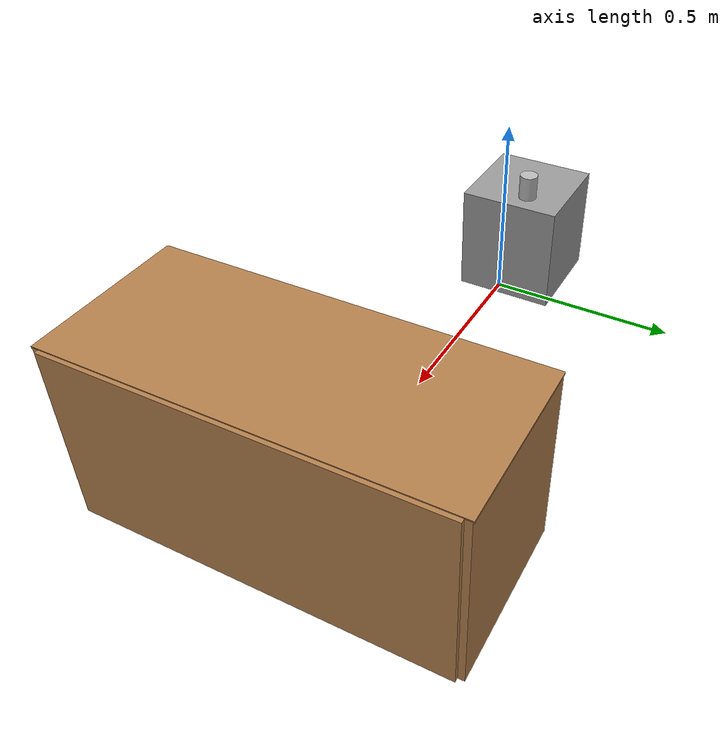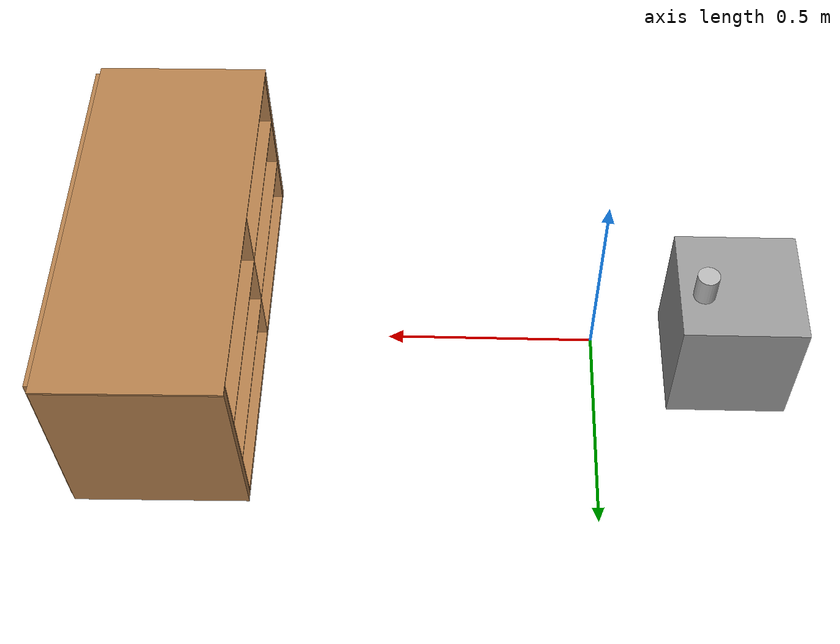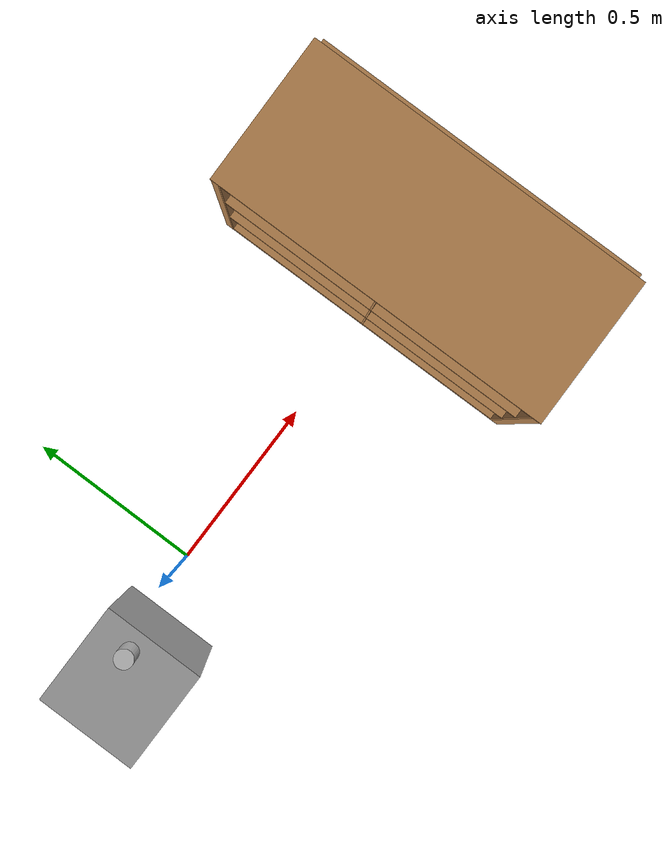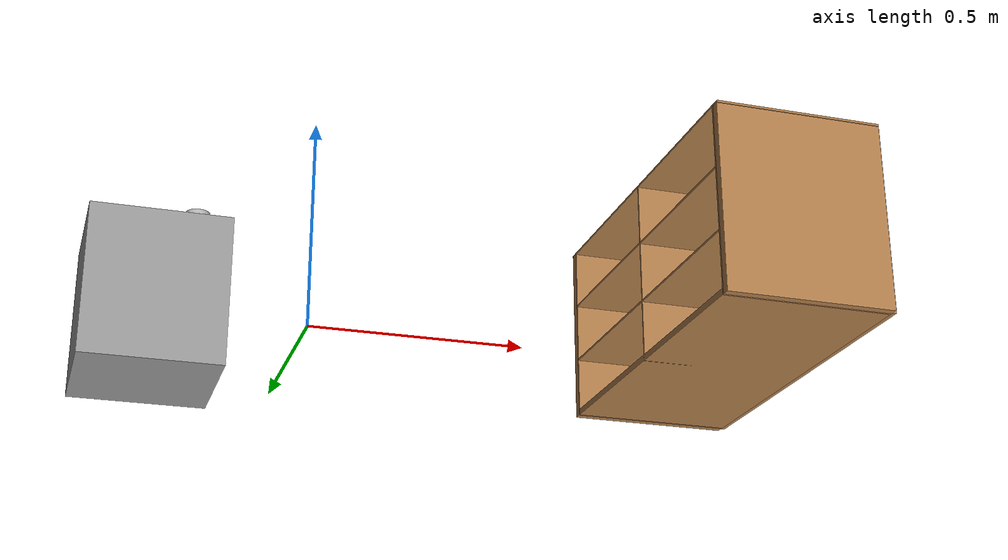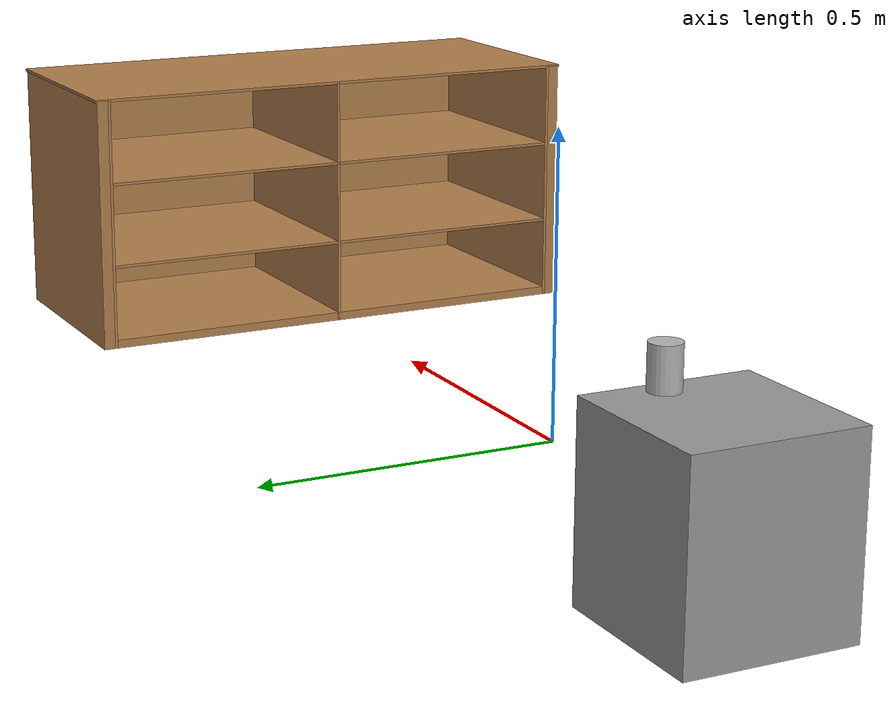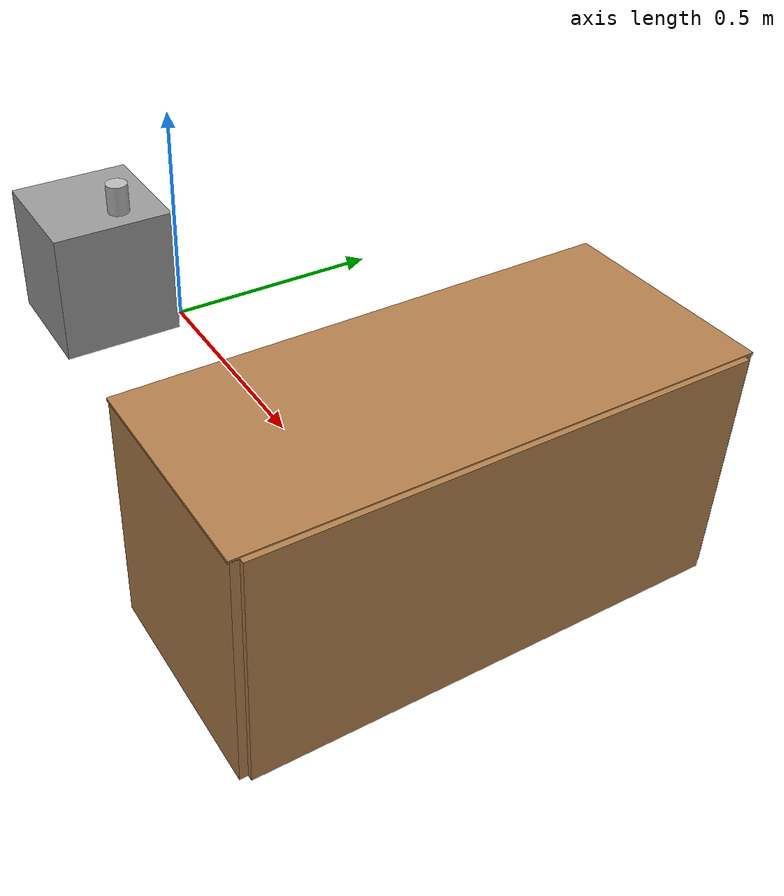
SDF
<?xml version='1.0'?>
<sdf version='1.6'>
  <model name='turtlebot3_rooms1'>
    <link name='link_0'>
      <pose frame=''>-0.355533 -0.070235 0.004189 0 -0 0</pose>
      <inertial>
        <mass>0.00123934</mass>
        <inertia>
          <ixx>2.13894e-06</ixx>
          <ixy>0</ixy>
          <ixz>0</ixz>
          <iyy>2.13894e-06</iyy>
          <iyz>0</iyz>
          <izz>3.73085e-06</izz>
        </inertia>
        <pose frame=''>0 0 0 0 -0 0</pose>
      </inertial>
      <self_collide>0</self_collide>
      <kinematic>0</kinematic>
      <visual name='visual'>
        <pose frame=''>0 0 -0.025 0 -0 0</pose>
        <geometry>
          <box>
            <size>0.3 0.3 0.33</size>
          </box>
        </geometry>
        <material>
          <lighting>1</lighting>
          <script>
            <uri>file://media/materials/scripts/gazebo.material</uri>
            <name>Gazebo/Grey</name>
          </script>
          <ambient>0.3 0.3 0.3 1</ambient>
          <diffuse>0.7 0.7 0.7 1</diffuse>
          <specular>0.01 0.01 0.01 1</specular>
          <emissive>0 0 0 1</emissive>
          <shader type='pixel'/>
        </material>
        <cast_shadows>1</cast_shadows>
        <transparency>0</transparency>
      </visual>
      <collision name='collision'>
        <laser_retro>0</laser_retro>
        <max_contacts>10</max_contacts>
        <pose frame=''>0 0 -0.025 0 -0 0</pose>
        <geometry>
          <box>
            <size>0.3 0.3 0.33</size>
          </box>
        </geometry>
        <surface>
          <friction>
            <ode>
              <mu>1</mu>
              <mu2>1</mu2>
              <fdir1>0 0 0</fdir1>
              <slip1>0</slip1>
              <slip2>0</slip2>
            </ode>
            <torsional>
              <coefficient>1</coefficient>
              <patch_radius>0</patch_radius>
              <surface_radius>0</surface_radius>
              <use_patch_radius>1</use_patch_radius>
              <ode>
                <slip>0</slip>
              </ode>
            </torsional>
          </friction>
          <bounce>
            <restitution_coefficient>0</restitution_coefficient>
            <threshold>1e+06</threshold>
          </bounce>
          <contact>
            <collide_without_contact>0</collide_without_contact>
            <collide_without_contact_bitmask>1</collide_without_contact_bitmask>
            <collide_bitmask>1</collide_bitmask>
            <ode>
              <soft_cfm>0</soft_cfm>
              <soft_erp>0.2</soft_erp>
              <kp>1e+13</kp>
              <kd>1</kd>
              <max_vel>0.01</max_vel>
              <min_depth>0</min_depth>
            </ode>
            <bullet>
              <split_impulse>1</split_impulse>
              <split_impulse_penetration_threshold>-0.01</split_impulse_penetration_threshold>
              <soft_cfm>0</soft_cfm>
              <soft_erp>0.2</soft_erp>
              <kp>1e+13</kp>
              <kd>1</kd>
            </bullet>
          </contact>
        </surface>
      </collision>
    </link>
    <model name='bookshelf_i_0'>
      <link name='link'>
        <pose frame=''>0 0 0 0 0 -1.56022</pose>
        <inertial>
          <mass>1</mass>
        </inertial>
        <self_collide>0</self_collide>
        <kinematic>0</kinematic>
        <visual name='right_side'>
          <pose frame=''>-0.455 -0.195 0.225 0 -0 0</pose>
          <geometry>
            <box>
              <size>0.02 0.4 0.45</size>
            </box>
          </geometry>
          <material>
            <script>
	      <uri>file://media/materials/scripts/gazebo.material</uri>
              <name>Gazebo/Wood</name>
            </script>
            <shader type='pixel'/>
            <ambient>1 1 1 1</ambient>
            <diffuse>1 1 1 1</diffuse>
            <specular>0 0 0 1</specular>
            <emissive>0 0 0 1</emissive>
          </material>
          <transparency>0</transparency>
          <cast_shadows>1</cast_shadows>
        </visual>
        <visual name='left_side_inner'>
          <pose frame=''>0.4425 -0.195 0.225 0 -0 0</pose>
          <geometry>
            <box>
              <size>0.005 0.4 0.45</size>
            </box>
          </geometry>
          <material>
            <script>
              <uri>file://media/materials/scripts/gazebo.material</uri>
              <name>Gazebo/Wood</name>
            </script>
            <shader type='pixel'/>
            <ambient>1 1 1 1</ambient>
            <diffuse>1 1 1 1</diffuse>
            <specular>0.2 0.2 0.2 1</specular>
            <emissive>0 0 0 1</emissive>
          </material>
          <transparency>0</transparency>
          <cast_shadows>1</cast_shadows>
        </visual>
        <visual name='bottom'>
          <pose frame=''>0 -0.195 0.0075 0 -0 0</pose>
          <geometry>
            <box>
              <size>0.88 0.4 0.015</size>
            </box>
          </geometry>
          <material>
            <script>
              <uri>file://media/materials/scripts/gazebo.material</uri>
              <name>Gazebo/Wood</name>
            </script>
            <shader type='pixel'/>
            <ambient>1 1 1 1</ambient>
            <diffuse>1 1 1 1</diffuse>
            <specular>0.2 0.2 0.2 1</specular>
            <emissive>0 0 0 1</emissive>
          </material>
          <transparency>0</transparency>
          <cast_shadows>1</cast_shadows>
        </visual>
        <visual name='low_shelf'>
          <pose frame=''>0 -0.195 0.15 0 -0 0</pose>
          <geometry>
            <box>
              <size>0.88 0.4 0.005</size>
            </box>
          </geometry>
          <material>
            <script>
              <uri>file://media/materials/scripts/gazebo.material</uri>
              <name>Gazebo/Wood</name>
            </script>
            <shader type='pixel'/>
            <ambient>1 1 1 1</ambient>
            <diffuse>1 1 1 1</diffuse>
            <specular>0.2 0.2 0.2 1</specular>
            <emissive>0 0 0 1</emissive>
          </material>
          <transparency>0</transparency>
          <cast_shadows>1</cast_shadows>
        </visual>
        <visual name='back'>
          <pose frame=''>0 0.01 0.225 0 -0 0</pose>
          <geometry>
            <box>
              <size>0.9 0.01 0.45</size>
            </box>
          </geometry>
          <material>
            <script>
              <uri>file://media/materials/scripts/gazebo.material</uri>
              <name>Gazebo/Wood</name>
            </script>
            <shader type='pixel'/>
            <ambient>1 1 1 1</ambient>
            <diffuse>1 1 1 1</diffuse>
            <specular>0.2 0.2 0.2 1</specular>
            <emissive>0 0 0 1</emissive>
          </material>
          <transparency>0</transparency>
          <cast_shadows>1</cast_shadows>
        </visual>
        <visual name='top'>
          <pose frame=''>0 -0.195 0.45 0 -0 0</pose>
          <geometry>
            <box>
              <size>0.935 0.4 0.005</size>
            </box>
          </geometry>
          <material>
            <script>
              <uri>file://media/materials/scripts/gazebo.material</uri>
              <name>Gazebo/Wood</name>
            </script>
            <shader type='pixel'/>
            <ambient>1 1 1 1</ambient>
            <diffuse>1 1 1 1</diffuse>
            <specular>0.2 0.2 0.2 1</specular>
            <emissive>0 0 0 1</emissive>
          </material>
          <transparency>0</transparency>
          <cast_shadows>1</cast_shadows>
        </visual>
        <visual name='right_side_inner'>
          <pose frame=''>-0.4425 -0.195 0.225 0 -0 0</pose>
          <geometry>
            <box>
              <size>0.005 0.4 0.45</size>
            </box>
          </geometry>
          <material>
            <script>
              <uri>file://media/materials/scripts/gazebo.material</uri>
              <name>Gazebo/Wood</name>
            </script>
            <shader type='pixel'/>
            <ambient>1 1 1 1</ambient>
            <diffuse>1 1 1 1</diffuse>
            <specular>0.2 0.2 0.2 1</specular>
            <emissive>0 0 0 1</emissive>
          </material>
          <transparency>0</transparency>
          <cast_shadows>1</cast_shadows>
        </visual>
        <visual name='high_shelf'>
          <pose frame=''>0 -0.195 0.3 0 -0 0</pose>
          <geometry>
            <box>
              <size>0.88 0.4 0.005</size>
            </box>
          </geometry>
          <material>
            <script>
              <uri>file://media/materials/scripts/gazebo.material</uri>
              <name>Gazebo/Wood</name>
            </script>
            <shader type='pixel'/>
            <ambient>1 1 1 1</ambient>
            <diffuse>1 1 1 1</diffuse>
            <specular>0.2 0.2 0.2 1</specular>
            <emissive>0 0 0 1</emissive>
          </material>
          <transparency>0</transparency>
          <cast_shadows>1</cast_shadows>
        </visual>
        <visual name='left_side'>
          <pose frame=''>0.455 -0.195 0.225 0 -0 0</pose>
          <geometry>
            <box>
              <size>0.02 0.4 0.45</size>
            </box>
          </geometry>
          <material>
            <script>
	      <uri>file://media/materials/scripts/gazebo.material</uri>
              <name>Gazebo/Wood</name>
            </script>
            <shader type='pixel'/>
            <ambient>1 1 1 1</ambient>
            <diffuse>1 1 1 1</diffuse>
            <specular>0 0 0 1</specular>
            <emissive>0 0 0 1</emissive>
          </material>
          <transparency>0</transparency>
          <cast_shadows>1</cast_shadows>
        </visual>
        <visual name='right_side_center'>
          <pose frame=''>0 -0.195 0.225 0 -0 0</pose>
          <geometry>
            <box>
              <size>0.005 0.4 0.45</size>
            </box>
          </geometry>
          <material>
            <script>
              <uri>file://media/materials/scripts/gazebo.material</uri>
              <name>Gazebo/Wood</name>
            </script>
            <shader type='pixel'/>
            <ambient>1 1 1 1</ambient>
            <diffuse>1 1 1 1</diffuse>
            <specular>0.2 0.2 0.2 1</specular>
            <emissive>0 0 0 1</emissive>
          </material>
          <transparency>0</transparency>
          <cast_shadows>1</cast_shadows>
        </visual>
        <collision name='top'>
          <laser_retro>0</laser_retro>
          <max_contacts>10</max_contacts>
          <pose frame=''>0 -0.195 0.45 0 -0 0</pose>
          <geometry>
            <box>
              <size>0.935 0.4 0.005</size>
            </box>
          </geometry>
          <surface>
            <friction>
              <ode>
                <mu>1</mu>
                <mu2>1</mu2>
                <fdir1>0 0 0</fdir1>
                <slip1>0</slip1>
                <slip2>0</slip2>
              </ode>
              <torsional>
                <coefficient>1</coefficient>
                <patch_radius>0</patch_radius>
                <surface_radius>0</surface_radius>
                <use_patch_radius>1</use_patch_radius>
                <ode>
                  <slip>0</slip>
                </ode>
              </torsional>
            </friction>
            <bounce>
              <restitution_coefficient>0</restitution_coefficient>
              <threshold>1e+06</threshold>
            </bounce>
            <contact>
              <collide_without_contact>0</collide_without_contact>
              <collide_without_contact_bitmask>1</collide_without_contact_bitmask>
              <collide_bitmask>1</collide_bitmask>
              <ode>
                <soft_cfm>0</soft_cfm>
                <soft_erp>0.2</soft_erp>
                <kp>1e+13</kp>
                <kd>1</kd>
                <max_vel>0.01</max_vel>
                <min_depth>0</min_depth>
              </ode>
              <bullet>
                <split_impulse>1</split_impulse>
                <split_impulse_penetration_threshold>-0.01</split_impulse_penetration_threshold>
                <soft_cfm>0</soft_cfm>
                <soft_erp>0.2</soft_erp>
                <kp>1e+13</kp>
                <kd>1</kd>
              </bullet>
            </contact>
          </surface>
        </collision>
        <collision name='right_side_center'>
          <laser_retro>0</laser_retro>
          <max_contacts>10</max_contacts>
          <pose frame=''>0 -0.195 0.225 0 -0 0</pose>
          <geometry>
            <box>
              <size>0.005 0.4 0.45</size>
            </box>
          </geometry>
          <surface>
            <friction>
              <ode>
                <mu>1</mu>
                <mu2>1</mu2>
                <fdir1>0 0 0</fdir1>
                <slip1>0</slip1>
                <slip2>0</slip2>
              </ode>
              <torsional>
                <coefficient>1</coefficient>
                <patch_radius>0</patch_radius>
                <surface_radius>0</surface_radius>
                <use_patch_radius>1</use_patch_radius>
                <ode>
                  <slip>0</slip>
                </ode>
              </torsional>
            </friction>
            <bounce>
              <restitution_coefficient>0</restitution_coefficient>
              <threshold>1e+06</threshold>
            </bounce>
            <contact>
              <collide_without_contact>0</collide_without_contact>
              <collide_without_contact_bitmask>1</collide_without_contact_bitmask>
              <collide_bitmask>1</collide_bitmask>
              <ode>
                <soft_cfm>0</soft_cfm>
                <soft_erp>0.2</soft_erp>
                <kp>1e+13</kp>
                <kd>1</kd>
                <max_vel>0.01</max_vel>
                <min_depth>0</min_depth>
              </ode>
              <bullet>
                <split_impulse>1</split_impulse>
                <split_impulse_penetration_threshold>-0.01</split_impulse_penetration_threshold>
                <soft_cfm>0</soft_cfm>
                <soft_erp>0.2</soft_erp>
                <kp>1e+13</kp>
                <kd>1</kd>
              </bullet>
            </contact>
          </surface>
        </collision>
        <collision name='back'>
          <laser_retro>0</laser_retro>
          <max_contacts>10</max_contacts>
          <pose frame=''>0 0.01 0.225 0 -0 0</pose>
          <geometry>
            <box>
              <size>0.9 0.01 0.45</size>
            </box>
          </geometry>
          <surface>
            <friction>
              <ode>
                <mu>1</mu>
                <mu2>1</mu2>
                <fdir1>0 0 0</fdir1>
                <slip1>0</slip1>
                <slip2>0</slip2>
              </ode>
              <torsional>
                <coefficient>1</coefficient>
                <patch_radius>0</patch_radius>
                <surface_radius>0</surface_radius>
                <use_patch_radius>1</use_patch_radius>
                <ode>
                  <slip>0</slip>
                </ode>
              </torsional>
            </friction>
            <bounce>
              <restitution_coefficient>0</restitution_coefficient>
              <threshold>1e+06</threshold>
            </bounce>
            <contact>
              <collide_without_contact>0</collide_without_contact>
              <collide_without_contact_bitmask>1</collide_without_contact_bitmask>
              <collide_bitmask>1</collide_bitmask>
              <ode>
                <soft_cfm>0</soft_cfm>
                <soft_erp>0.2</soft_erp>
                <kp>1e+13</kp>
                <kd>1</kd>
                <max_vel>0.01</max_vel>
                <min_depth>0</min_depth>
              </ode>
              <bullet>
                <split_impulse>1</split_impulse>
                <split_impulse_penetration_threshold>-0.01</split_impulse_penetration_threshold>
                <soft_cfm>0</soft_cfm>
                <soft_erp>0.2</soft_erp>
                <kp>1e+13</kp>
                <kd>1</kd>
              </bullet>
            </contact>
          </surface>
        </collision>
        <collision name='right_side_inner'>
          <laser_retro>0</laser_retro>
          <max_contacts>10</max_contacts>
          <pose frame=''>-0.4425 -0.195 0.225 0 -0 0</pose>
          <geometry>
            <box>
              <size>0.005 0.4 0.45</size>
            </box>
          </geometry>
          <surface>
            <friction>
              <ode>
                <mu>1</mu>
                <mu2>1</mu2>
                <fdir1>0 0 0</fdir1>
                <slip1>0</slip1>
                <slip2>0</slip2>
              </ode>
              <torsional>
                <coefficient>1</coefficient>
                <patch_radius>0</patch_radius>
                <surface_radius>0</surface_radius>
                <use_patch_radius>1</use_patch_radius>
                <ode>
                  <slip>0</slip>
                </ode>
              </torsional>
            </friction>
            <bounce>
              <restitution_coefficient>0</restitution_coefficient>
              <threshold>1e+06</threshold>
            </bounce>
            <contact>
              <collide_without_contact>0</collide_without_contact>
              <collide_without_contact_bitmask>1</collide_without_contact_bitmask>
              <collide_bitmask>1</collide_bitmask>
              <ode>
                <soft_cfm>0</soft_cfm>
                <soft_erp>0.2</soft_erp>
                <kp>1e+13</kp>
                <kd>1</kd>
                <max_vel>0.01</max_vel>
                <min_depth>0</min_depth>
              </ode>
              <bullet>
                <split_impulse>1</split_impulse>
                <split_impulse_penetration_threshold>-0.01</split_impulse_penetration_threshold>
                <soft_cfm>0</soft_cfm>
                <soft_erp>0.2</soft_erp>
                <kp>1e+13</kp>
                <kd>1</kd>
              </bullet>
            </contact>
          </surface>
        </collision>
        <collision name='bottom'>
          <laser_retro>0</laser_retro>
          <max_contacts>10</max_contacts>
          <pose frame=''>0 -0.195 0.0075 0 -0 0</pose>
          <geometry>
            <box>
              <size>0.88 0.4 0.015</size>
            </box>
          </geometry>
          <surface>
            <friction>
              <ode>
                <mu>1</mu>
                <mu2>1</mu2>
                <fdir1>0 0 0</fdir1>
                <slip1>0</slip1>
                <slip2>0</slip2>
              </ode>
              <torsional>
                <coefficient>1</coefficient>
                <patch_radius>0</patch_radius>
                <surface_radius>0</surface_radius>
                <use_patch_radius>1</use_patch_radius>
                <ode>
                  <slip>0</slip>
                </ode>
              </torsional>
            </friction>
            <bounce>
              <restitution_coefficient>0</restitution_coefficient>
              <threshold>1e+06</threshold>
            </bounce>
            <contact>
              <collide_without_contact>0</collide_without_contact>
              <collide_without_contact_bitmask>1</collide_without_contact_bitmask>
              <collide_bitmask>1</collide_bitmask>
              <ode>
                <soft_cfm>0</soft_cfm>
                <soft_erp>0.2</soft_erp>
                <kp>1e+13</kp>
                <kd>1</kd>
                <max_vel>0.01</max_vel>
                <min_depth>0</min_depth>
              </ode>
              <bullet>
                <split_impulse>1</split_impulse>
                <split_impulse_penetration_threshold>-0.01</split_impulse_penetration_threshold>
                <soft_cfm>0</soft_cfm>
                <soft_erp>0.2</soft_erp>
                <kp>1e+13</kp>
                <kd>1</kd>
              </bullet>
            </contact>
          </surface>
        </collision>
        <collision name='low_shelf'>
          <laser_retro>0</laser_retro>
          <max_contacts>10</max_contacts>
          <pose frame=''>0 -0.195 0.15 0 -0 0</pose>
          <geometry>
            <box>
              <size>0.88 0.4 0.005</size>
            </box>
          </geometry>
          <surface>
            <friction>
              <ode>
                <mu>1</mu>
                <mu2>1</mu2>
                <fdir1>0 0 0</fdir1>
                <slip1>0</slip1>
                <slip2>0</slip2>
              </ode>
              <torsional>
                <coefficient>1</coefficient>
                <patch_radius>0</patch_radius>
                <surface_radius>0</surface_radius>
                <use_patch_radius>1</use_patch_radius>
                <ode>
                  <slip>0</slip>
                </ode>
              </torsional>
            </friction>
            <bounce>
              <restitution_coefficient>0</restitution_coefficient>
              <threshold>1e+06</threshold>
            </bounce>
            <contact>
              <collide_without_contact>0</collide_without_contact>
              <collide_without_contact_bitmask>1</collide_without_contact_bitmask>
              <collide_bitmask>1</collide_bitmask>
              <ode>
                <soft_cfm>0</soft_cfm>
                <soft_erp>0.2</soft_erp>
                <kp>1e+13</kp>
                <kd>1</kd>
                <max_vel>0.01</max_vel>
                <min_depth>0</min_depth>
              </ode>
              <bullet>
                <split_impulse>1</split_impulse>
                <split_impulse_penetration_threshold>-0.01</split_impulse_penetration_threshold>
                <soft_cfm>0</soft_cfm>
                <soft_erp>0.2</soft_erp>
                <kp>1e+13</kp>
                <kd>1</kd>
              </bullet>
            </contact>
          </surface>
        </collision>
        <collision name='high_shelf'>
          <laser_retro>0</laser_retro>
          <max_contacts>10</max_contacts>
          <pose frame=''>0 -0.195 0.3 0 -0 0</pose>
          <geometry>
            <box>
              <size>0.88 0.4 0.005</size>
            </box>
          </geometry>
          <surface>
            <friction>
              <ode>
                <mu>1</mu>
                <mu2>1</mu2>
                <fdir1>0 0 0</fdir1>
                <slip1>0</slip1>
                <slip2>0</slip2>
              </ode>
              <torsional>
                <coefficient>1</coefficient>
                <patch_radius>0</patch_radius>
                <surface_radius>0</surface_radius>
                <use_patch_radius>1</use_patch_radius>
                <ode>
                  <slip>0</slip>
                </ode>
              </torsional>
            </friction>
            <bounce>
              <restitution_coefficient>0</restitution_coefficient>
              <threshold>1e+06</threshold>
            </bounce>
            <contact>
              <collide_without_contact>0</collide_without_contact>
              <collide_without_contact_bitmask>1</collide_without_contact_bitmask>
              <collide_bitmask>1</collide_bitmask>
              <ode>
                <soft_cfm>0</soft_cfm>
                <soft_erp>0.2</soft_erp>
                <kp>1e+13</kp>
                <kd>1</kd>
                <max_vel>0.01</max_vel>
                <min_depth>0</min_depth>
              </ode>
              <bullet>
                <split_impulse>1</split_impulse>
                <split_impulse_penetration_threshold>-0.01</split_impulse_penetration_threshold>
                <soft_cfm>0</soft_cfm>
                <soft_erp>0.2</soft_erp>
                <kp>1e+13</kp>
                <kd>1</kd>
              </bullet>
            </contact>
          </surface>
        </collision>
        <collision name='left_side_inner'>
          <laser_retro>0</laser_retro>
          <max_contacts>10</max_contacts>
          <pose frame=''>0.4425 -0.195 0.225 0 -0 0</pose>
          <geometry>
            <box>
              <size>0.005 0.4 0.45</size>
            </box>
          </geometry>
          <surface>
            <friction>
              <ode>
                <mu>1</mu>
                <mu2>1</mu2>
                <fdir1>0 0 0</fdir1>
                <slip1>0</slip1>
                <slip2>0</slip2>
              </ode>
              <torsional>
                <coefficient>1</coefficient>
                <patch_radius>0</patch_radius>
                <surface_radius>0</surface_radius>
                <use_patch_radius>1</use_patch_radius>
                <ode>
                  <slip>0</slip>
                </ode>
              </torsional>
            </friction>
            <bounce>
              <restitution_coefficient>0</restitution_coefficient>
              <threshold>1e+06</threshold>
            </bounce>
            <contact>
              <collide_without_contact>0</collide_without_contact>
              <collide_without_contact_bitmask>1</collide_without_contact_bitmask>
              <collide_bitmask>1</collide_bitmask>
              <ode>
                <soft_cfm>0</soft_cfm>
                <soft_erp>0.2</soft_erp>
                <kp>1e+13</kp>
                <kd>1</kd>
                <max_vel>0.01</max_vel>
                <min_depth>0</min_depth>
              </ode>
              <bullet>
                <split_impulse>1</split_impulse>
                <split_impulse_penetration_threshold>-0.01</split_impulse_penetration_threshold>
                <soft_cfm>0</soft_cfm>
                <soft_erp>0.2</soft_erp>
                <kp>1e+13</kp>
                <kd>1</kd>
              </bullet>
            </contact>
          </surface>
        </collision>
        <collision name='right_side'>
          <laser_retro>0</laser_retro>
          <max_contacts>10</max_contacts>
          <pose frame=''>-0.455 -0.195 0.225 0 -0 0</pose>
          <geometry>
            <box>
              <size>0.02 0.4 0.45</size>
            </box>
          </geometry>
          <surface>
            <friction>
              <ode>
                <mu>1</mu>
                <mu2>1</mu2>
                <fdir1>0 0 0</fdir1>
                <slip1>0</slip1>
                <slip2>0</slip2>
              </ode>
              <torsional>
                <coefficient>1</coefficient>
                <patch_radius>0</patch_radius>
                <surface_radius>0</surface_radius>
                <use_patch_radius>1</use_patch_radius>
                <ode>
                  <slip>0</slip>
                </ode>
              </torsional>
            </friction>
            <bounce>
              <restitution_coefficient>0</restitution_coefficient>
              <threshold>1e+06</threshold>
            </bounce>
            <contact>
              <collide_without_contact>0</collide_without_contact>
              <collide_without_contact_bitmask>1</collide_without_contact_bitmask>
              <collide_bitmask>1</collide_bitmask>
              <ode>
                <soft_cfm>0</soft_cfm>
                <soft_erp>0.2</soft_erp>
                <kp>1e+13</kp>
                <kd>1</kd>
                <max_vel>0.01</max_vel>
                <min_depth>0</min_depth>
              </ode>
              <bullet>
                <split_impulse>1</split_impulse>
                <split_impulse_penetration_threshold>-0.01</split_impulse_penetration_threshold>
                <soft_cfm>0</soft_cfm>
                <soft_erp>0.2</soft_erp>
                <kp>1e+13</kp>
                <kd>1</kd>
              </bullet>
            </contact>
          </surface>
        </collision>
        <collision name='left_side'>
          <laser_retro>0</laser_retro>
          <max_contacts>10</max_contacts>
          <pose frame=''>0.455 -0.195 0.225 0 -0 0</pose>
          <geometry>
            <box>
              <size>0.02 0.4 0.45</size>
            </box>
          </geometry>
          <surface>
            <friction>
              <ode>
                <mu>1</mu>
                <mu2>1</mu2>
                <fdir1>0 0 0</fdir1>
                <slip1>0</slip1>
                <slip2>0</slip2>
              </ode>
              <torsional>
                <coefficient>1</coefficient>
                <patch_radius>0</patch_radius>
                <surface_radius>0</surface_radius>
                <use_patch_radius>1</use_patch_radius>
                <ode>
                  <slip>0</slip>
                </ode>
              </torsional>
            </friction>
            <bounce>
              <restitution_coefficient>0</restitution_coefficient>
              <threshold>1e+06</threshold>
            </bounce>
            <contact>
              <collide_without_contact>0</collide_without_contact>
              <collide_without_contact_bitmask>1</collide_without_contact_bitmask>
              <collide_bitmask>1</collide_bitmask>
              <ode>
                <soft_cfm>0</soft_cfm>
                <soft_erp>0.2</soft_erp>
                <kp>1e+13</kp>
                <kd>1</kd>
                <max_vel>0.01</max_vel>
                <min_depth>0</min_depth>
              </ode>
              <bullet>
                <split_impulse>1</split_impulse>
                <split_impulse_penetration_threshold>-0.01</split_impulse_penetration_threshold>
                <soft_cfm>0</soft_cfm>
                <soft_erp>0.2</soft_erp>
                <kp>1e+13</kp>
                <kd>1</kd>
              </bullet>
            </contact>
          </surface>
        </collision>
      </link>
      <static>1</static>
      <allow_auto_disable>1</allow_auto_disable>
      <pose frame=''>1.19738 0.00541 0 0 -0 0</pose>
    </model>
    <model name='small_beer'>
      <link name='link'>
        <pose frame=''>0.2 0.02 -0.01 0 -0 0</pose>
        <inertial>
          <mass>0.001</mass>
          <inertia>
            <ixx>4.7583e-05</ixx>
            <ixy>0</ixy>
            <ixz>0</ixz>
            <iyy>4.7583e-05</iyy>
            <iyz>0</iyz>
            <izz>3.125e-06</izz>
          </inertia>
        </inertial>
        <collision name='collision'>
          <geometry>
            <cylinder>
              <radius>0.027</radius>
              <length>0.075</length>
            </cylinder>
          </geometry>
          <surface>
            <friction>
              <ode>
                <mu>1e+06</mu>
                <mu2>10000</mu2>
              </ode>
              <torsional>
                <ode/>
              </torsional>
            </friction>
            <contact>
              <ode>
                <kp>1e+06</kp>
                <kd>100</kd>
                <max_vel>1</max_vel>
                <min_depth>0.002</min_depth>
              </ode>
            </contact>
            <bounce/>
          </surface>
          <max_contacts>10</max_contacts>
        </collision>
        <visual name='visual'>
          <geometry>
            <cylinder>
              <radius>0.027</radius>
              <length>0.075</length>
            </cylinder>
          </geometry>
          <material>
            <script>
              <uri>model://turtlebot3_rooms1/small_beer/materials/scripts</uri>
              <uri>model://turtlebot3_rooms1/small_beer/materials/textures</uri>
              <name>Beer/Diffuse</name>
            </script>
          </material>
        </visual>
        <self_collide>0</self_collide>
        <kinematic>0</kinematic>
      </link>
      <pose frame=''>-0.062405 -0.013392 0.199189 0 -0 3.14</pose>
    </model>
    <static>1</static>
    <allow_auto_disable>0</allow_auto_disable>
  </model>
</sdf>
